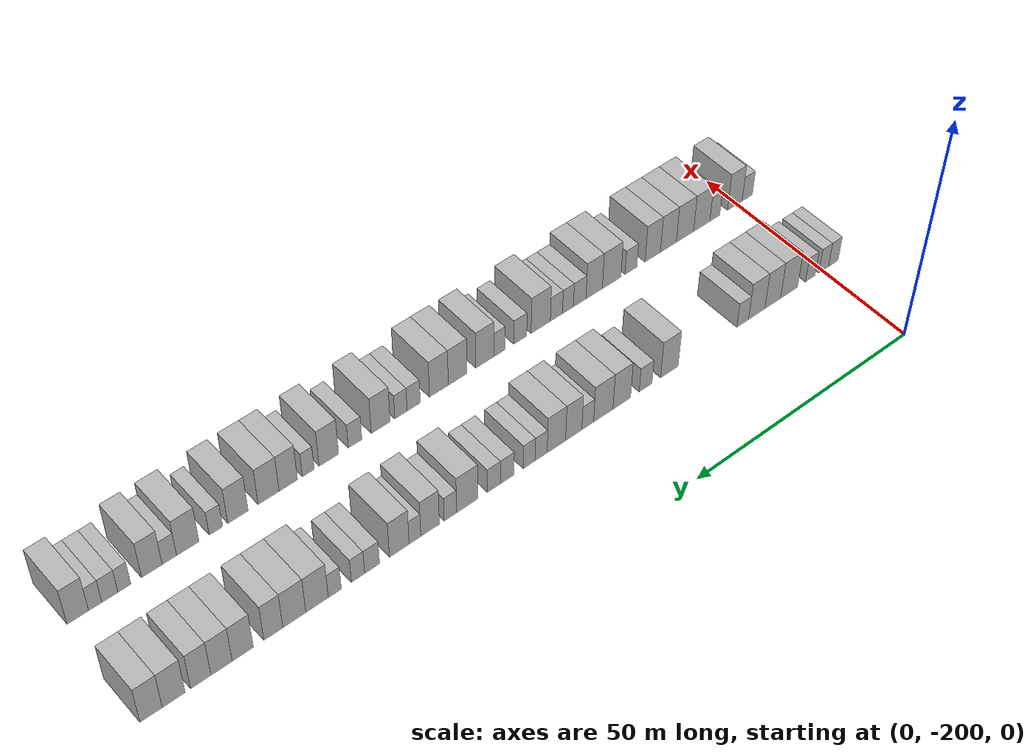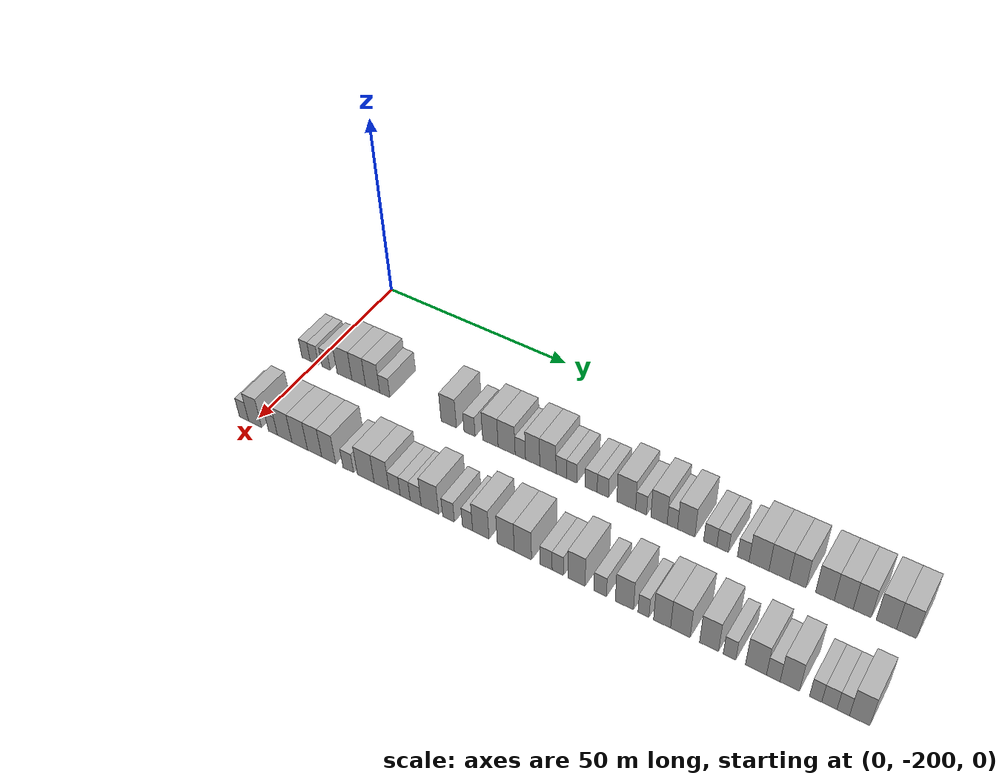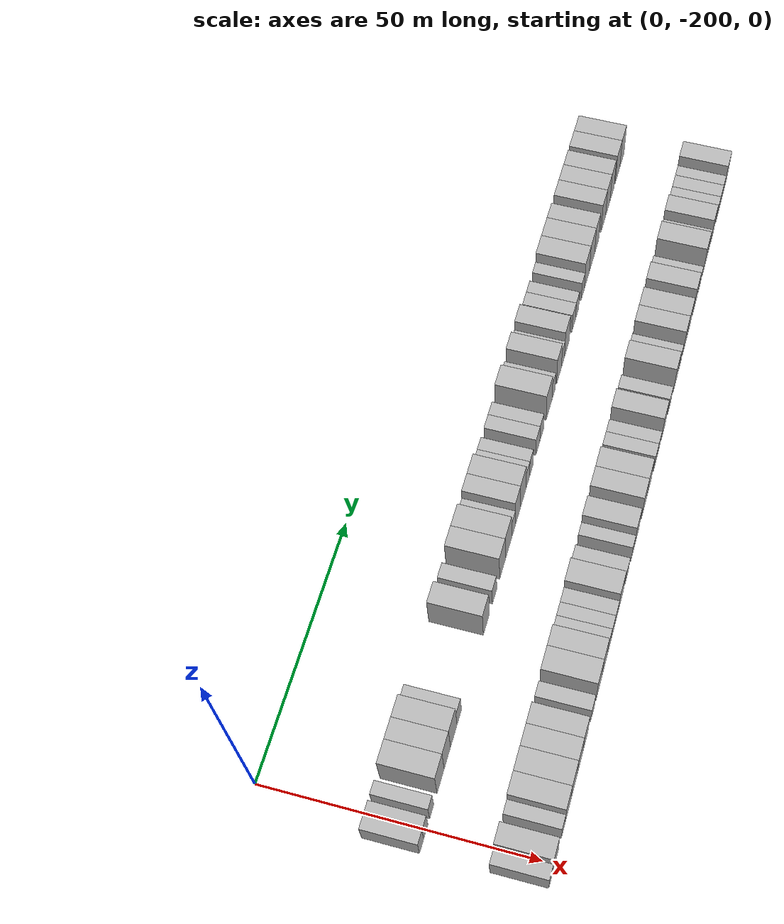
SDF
<sdf version="1.6">
 <world name="default">
  <model name="building_1">
   <static>1</static>
   <pose>25.0000 -202.7719 0 0.000000 0.000000 0.000000</pose>
   <link name="link">
    <pose>0 0 3.00 0 0 0</pose>
    <collision name="collision"><geometry><box><size>10.0000 2.4561 6.0000</size></box></geometry></collision>
    <visual name="visual">
     <cast_shadows>0</cast_shadows>
     <geometry><box><size>10.0000 2.4561 6.0000</size></box></geometry>
     <material>
      <script>
       <uri>model://HANNAS_wall/materials/scripts</uri>
       <uri>model://HANNAS_wall/materials/textures</uri>
       <name>vrc/HANNAS_wall</name>
      </script>
     </material>
    </visual>
   </link>
  </model>
  <model name="building_2">
   <static>1</static>
   <pose>25.0000 -200.3070 0 0.000000 0.000000 0.000000</pose>
   <link name="link">
    <pose>0 0 3.00 0 0 0</pose>
    <collision name="collision"><geometry><box><size>10.0000 2.4737 6.0000</size></box></geometry></collision>
    <visual name="visual">
     <cast_shadows>0</cast_shadows>
     <geometry><box><size>10.0000 2.4737 6.0000</size></box></geometry>
     <material>
      <script>
       <uri>model://HANNAS_wall/materials/scripts</uri>
       <uri>model://HANNAS_wall/materials/textures</uri>
       <name>vrc/HANNAS_wall</name>
      </script>
     </material>
    </visual>
   </link>
  </model>
  <model name="building_3">
   <static>1</static>
   <pose>25.0000 -196.8494 0 0.000000 0.000000 0.000000</pose>
   <link name="link">
    <pose>0 0 3.00 0 0 0</pose>
    <collision name="collision"><geometry><box><size>10.0000 2.4415 6.0000</size></box></geometry></collision>
    <visual name="visual">
     <cast_shadows>0</cast_shadows>
     <geometry><box><size>10.0000 2.4415 6.0000</size></box></geometry>
     <material>
      <script>
       <uri>model://HANNAS_wall/materials/scripts</uri>
       <uri>model://HANNAS_wall/materials/textures</uri>
       <name>vrc/HANNAS_wall</name>
      </script>
     </material>
    </visual>
   </link>
  </model>
  <model name="building_4">
   <static>1</static>
   <pose>25.0000 -191.4836 0 0.000000 0.000000 0.000000</pose>
   <link name="link">
    <pose>0 0 4.50 0 0 0</pose>
    <collision name="collision"><geometry><box><size>10.0000 4.2901 9.0000</size></box></geometry></collision>
    <visual name="visual">
     <cast_shadows>0</cast_shadows>
     <geometry><box><size>10.0000 4.2901 9.0000</size></box></geometry>
     <material>
      <script>
       <uri>model://HANNAS_wall/materials/scripts</uri>
       <uri>model://HANNAS_wall/materials/textures</uri>
       <name>vrc/HANNAS_wall</name>
      </script>
     </material>
    </visual>
   </link>
  </model>
  <model name="building_5">
   <static>1</static>
   <pose>25.0000 -187.3843 0 0.000000 0.000000 0.000000</pose>
   <link name="link">
    <pose>0 0 4.50 0 0 0</pose>
    <collision name="collision"><geometry><box><size>10.0000 3.9084 9.0000</size></box></geometry></collision>
    <visual name="visual">
     <cast_shadows>0</cast_shadows>
     <geometry><box><size>10.0000 3.9084 9.0000</size></box></geometry>
     <material>
      <script>
       <uri>model://HANNAS_wall/materials/scripts</uri>
       <uri>model://HANNAS_wall/materials/textures</uri>
       <name>vrc/HANNAS_wall</name>
      </script>
     </material>
    </visual>
   </link>
  </model>
  <model name="building_6">
   <static>1</static>
   <pose>25.0000 -183.4129 0 0.000000 0.000000 0.000000</pose>
   <link name="link">
    <pose>0 0 4.50 0 0 0</pose>
    <collision name="collision"><geometry><box><size>10.0000 4.0344 9.0000</size></box></geometry></collision>
    <visual name="visual">
     <cast_shadows>0</cast_shadows>
     <geometry><box><size>10.0000 4.0344 9.0000</size></box></geometry>
     <material>
      <script>
       <uri>model://HANNAS_wall/materials/scripts</uri>
       <uri>model://HANNAS_wall/materials/textures</uri>
       <name>vrc/HANNAS_wall</name>
      </script>
     </material>
    </visual>
   </link>
  </model>
  <model name="building_7">
   <static>1</static>
   <pose>25.0000 -179.9750 0 0.000000 0.000000 0.000000</pose>
   <link name="link">
    <pose>0 0 3.00 0 0 0</pose>
    <collision name="collision"><geometry><box><size>10.0000 2.8414 6.0000</size></box></geometry></collision>
    <visual name="visual">
     <cast_shadows>0</cast_shadows>
     <geometry><box><size>10.0000 2.8414 6.0000</size></box></geometry>
     <material>
      <script>
       <uri>model://HANNAS_wall/materials/scripts</uri>
       <uri>model://HANNAS_wall/materials/textures</uri>
       <name>vrc/HANNAS_wall</name>
      </script>
     </material>
    </visual>
   </link>
  </model>
  <model name="building_8">
   <static>1</static>
   <pose>25.0000 -162.3760 0 0.000000 0.000000 0.000000</pose>
   <link name="link">
    <pose>0 0 4.50 0 0 0</pose>
    <collision name="collision"><geometry><box><size>10.0000 4.1189 9.0000</size></box></geometry></collision>
    <visual name="visual">
     <cast_shadows>0</cast_shadows>
     <geometry><box><size>10.0000 4.1189 9.0000</size></box></geometry>
     <material>
      <script>
       <uri>model://HANNAS_wall/materials/scripts</uri>
       <uri>model://HANNAS_wall/materials/textures</uri>
       <name>vrc/HANNAS_wall</name>
      </script>
     </material>
    </visual>
   </link>
  </model>
  <model name="building_9">
   <static>1</static>
   <pose>25.0000 -156.8361 0 0.000000 0.000000 0.000000</pose>
   <link name="link">
    <pose>0 0 3.00 0 0 0</pose>
    <collision name="collision"><geometry><box><size>10.0000 2.9607 6.0000</size></box></geometry></collision>
    <visual name="visual">
     <cast_shadows>0</cast_shadows>
     <geometry><box><size>10.0000 2.9607 6.0000</size></box></geometry>
     <material>
      <script>
       <uri>model://HANNAS_wall/materials/scripts</uri>
       <uri>model://HANNAS_wall/materials/textures</uri>
       <name>vrc/HANNAS_wall</name>
      </script>
     </material>
    </visual>
   </link>
  </model>
  <model name="building_10">
   <static>1</static>
   <pose>25.0000 -151.3435 0 0.000000 0.000000 0.000000</pose>
   <link name="link">
    <pose>0 0 4.50 0 0 0</pose>
    <collision name="collision"><geometry><box><size>10.0000 4.0245 9.0000</size></box></geometry></collision>
    <visual name="visual">
     <cast_shadows>0</cast_shadows>
     <geometry><box><size>10.0000 4.0245 9.0000</size></box></geometry>
     <material>
      <script>
       <uri>model://HANNAS_wall/materials/scripts</uri>
       <uri>model://HANNAS_wall/materials/textures</uri>
       <name>vrc/HANNAS_wall</name>
      </script>
     </material>
    </visual>
   </link>
  </model>
  <model name="building_11">
   <static>1</static>
   <pose>25.0000 -147.1299 0 0.000000 0.000000 0.000000</pose>
   <link name="link">
    <pose>0 0 4.50 0 0 0</pose>
    <collision name="collision"><geometry><box><size>10.0000 4.4029 9.0000</size></box></geometry></collision>
    <visual name="visual">
     <cast_shadows>0</cast_shadows>
     <geometry><box><size>10.0000 4.4029 9.0000</size></box></geometry>
     <material>
      <script>
       <uri>model://HANNAS_wall/materials/scripts</uri>
       <uri>model://HANNAS_wall/materials/textures</uri>
       <name>vrc/HANNAS_wall</name>
      </script>
     </material>
    </visual>
   </link>
  </model>
  <model name="building_12">
   <static>1</static>
   <pose>25.0000 -143.6079 0 0.000000 0.000000 0.000000</pose>
   <link name="link">
    <pose>0 0 3.00 0 0 0</pose>
    <collision name="collision"><geometry><box><size>10.0000 2.6410 6.0000</size></box></geometry></collision>
    <visual name="visual">
     <cast_shadows>0</cast_shadows>
     <geometry><box><size>10.0000 2.6410 6.0000</size></box></geometry>
     <material>
      <script>
       <uri>model://HANNAS_wall/materials/scripts</uri>
       <uri>model://HANNAS_wall/materials/textures</uri>
       <name>vrc/HANNAS_wall</name>
      </script>
     </material>
    </visual>
   </link>
  </model>
  <model name="building_13">
   <static>1</static>
   <pose>25.0000 -140.4758 0 0.000000 0.000000 0.000000</pose>
   <link name="link">
    <pose>0 0 4.50 0 0 0</pose>
    <collision name="collision"><geometry><box><size>10.0000 3.6233 9.0000</size></box></geometry></collision>
    <visual name="visual">
     <cast_shadows>0</cast_shadows>
     <geometry><box><size>10.0000 3.6233 9.0000</size></box></geometry>
     <material>
      <script>
       <uri>model://HANNAS_wall/materials/scripts</uri>
       <uri>model://HANNAS_wall/materials/textures</uri>
       <name>vrc/HANNAS_wall</name>
      </script>
     </material>
    </visual>
   </link>
  </model>
  <model name="building_14">
   <static>1</static>
   <pose>25.0000 -136.6312 0 0.000000 0.000000 0.000000</pose>
   <link name="link">
    <pose>0 0 4.50 0 0 0</pose>
    <collision name="collision"><geometry><box><size>10.0000 4.0660 9.0000</size></box></geometry></collision>
    <visual name="visual">
     <cast_shadows>0</cast_shadows>
     <geometry><box><size>10.0000 4.0660 9.0000</size></box></geometry>
     <material>
      <script>
       <uri>model://HANNAS_wall/materials/scripts</uri>
       <uri>model://HANNAS_wall/materials/textures</uri>
       <name>vrc/HANNAS_wall</name>
      </script>
     </material>
    </visual>
   </link>
  </model>
  <model name="building_15">
   <static>1</static>
   <pose>25.0000 -133.2866 0 0.000000 0.000000 0.000000</pose>
   <link name="link">
    <pose>0 0 3.00 0 0 0</pose>
    <collision name="collision"><geometry><box><size>10.0000 2.6232 6.0000</size></box></geometry></collision>
    <visual name="visual">
     <cast_shadows>0</cast_shadows>
     <geometry><box><size>10.0000 2.6232 6.0000</size></box></geometry>
     <material>
      <script>
       <uri>model://HANNAS_wall/materials/scripts</uri>
       <uri>model://HANNAS_wall/materials/textures</uri>
       <name>vrc/HANNAS_wall</name>
      </script>
     </material>
    </visual>
   </link>
  </model>
  <model name="building_16">
   <static>1</static>
   <pose>25.0000 -130.6864 0 0.000000 0.000000 0.000000</pose>
   <link name="link">
    <pose>0 0 3.00 0 0 0</pose>
    <collision name="collision"><geometry><box><size>10.0000 2.5771 6.0000</size></box></geometry></collision>
    <visual name="visual">
     <cast_shadows>0</cast_shadows>
     <geometry><box><size>10.0000 2.5771 6.0000</size></box></geometry>
     <material>
      <script>
       <uri>model://HANNAS_wall/materials/scripts</uri>
       <uri>model://HANNAS_wall/materials/textures</uri>
       <name>vrc/HANNAS_wall</name>
      </script>
     </material>
    </visual>
   </link>
  </model>
  <model name="building_17">
   <static>1</static>
   <pose>25.0000 -125.9183 0 0.000000 0.000000 0.000000</pose>
   <link name="link">
    <pose>0 0 3.00 0 0 0</pose>
    <collision name="collision"><geometry><box><size>10.0000 2.9592 6.0000</size></box></geometry></collision>
    <visual name="visual">
     <cast_shadows>0</cast_shadows>
     <geometry><box><size>10.0000 2.9592 6.0000</size></box></geometry>
     <material>
      <script>
       <uri>model://HANNAS_wall/materials/scripts</uri>
       <uri>model://HANNAS_wall/materials/textures</uri>
       <name>vrc/HANNAS_wall</name>
      </script>
     </material>
    </visual>
   </link>
  </model>
  <model name="building_18">
   <static>1</static>
   <pose>25.0000 -123.0581 0 0.000000 0.000000 0.000000</pose>
   <link name="link">
    <pose>0 0 3.00 0 0 0</pose>
    <collision name="collision"><geometry><box><size>10.0000 2.7611 6.0000</size></box></geometry></collision>
    <visual name="visual">
     <cast_shadows>0</cast_shadows>
     <geometry><box><size>10.0000 2.7611 6.0000</size></box></geometry>
     <material>
      <script>
       <uri>model://HANNAS_wall/materials/scripts</uri>
       <uri>model://HANNAS_wall/materials/textures</uri>
       <name>vrc/HANNAS_wall</name>
      </script>
     </material>
    </visual>
   </link>
  </model>
  <model name="building_19">
   <static>1</static>
   <pose>25.0000 -117.4313 0 0.000000 0.000000 0.000000</pose>
   <link name="link">
    <pose>0 0 4.50 0 0 0</pose>
    <collision name="collision"><geometry><box><size>10.0000 4.4925 9.0000</size></box></geometry></collision>
    <visual name="visual">
     <cast_shadows>0</cast_shadows>
     <geometry><box><size>10.0000 4.4925 9.0000</size></box></geometry>
     <material>
      <script>
       <uri>model://HANNAS_wall/materials/scripts</uri>
       <uri>model://HANNAS_wall/materials/textures</uri>
       <name>vrc/HANNAS_wall</name>
      </script>
     </material>
    </visual>
   </link>
  </model>
  <model name="building_20">
   <static>1</static>
   <pose>25.0000 -113.8875 0 0.000000 0.000000 0.000000</pose>
   <link name="link">
    <pose>0 0 3.00 0 0 0</pose>
    <collision name="collision"><geometry><box><size>10.0000 2.5951 6.0000</size></box></geometry></collision>
    <visual name="visual">
     <cast_shadows>0</cast_shadows>
     <geometry><box><size>10.0000 2.5951 6.0000</size></box></geometry>
     <material>
      <script>
       <uri>model://HANNAS_wall/materials/scripts</uri>
       <uri>model://HANNAS_wall/materials/textures</uri>
       <name>vrc/HANNAS_wall</name>
      </script>
     </material>
    </visual>
   </link>
  </model>
  <model name="building_21">
   <static>1</static>
   <pose>25.0000 -109.6784 0 0.000000 0.000000 0.000000</pose>
   <link name="link">
    <pose>0 0 4.50 0 0 0</pose>
    <collision name="collision"><geometry><box><size>10.0000 3.8230 9.0000</size></box></geometry></collision>
    <visual name="visual">
     <cast_shadows>0</cast_shadows>
     <geometry><box><size>10.0000 3.8230 9.0000</size></box></geometry>
     <material>
      <script>
       <uri>model://HANNAS_wall/materials/scripts</uri>
       <uri>model://HANNAS_wall/materials/textures</uri>
       <name>vrc/HANNAS_wall</name>
      </script>
     </material>
    </visual>
   </link>
  </model>
  <model name="building_22">
   <static>1</static>
   <pose>25.0000 -106.5655 0 0.000000 0.000000 0.000000</pose>
   <link name="link">
    <pose>0 0 3.00 0 0 0</pose>
    <collision name="collision"><geometry><box><size>10.0000 2.4029 6.0000</size></box></geometry></collision>
    <visual name="visual">
     <cast_shadows>0</cast_shadows>
     <geometry><box><size>10.0000 2.4029 6.0000</size></box></geometry>
     <material>
      <script>
       <uri>model://HANNAS_wall/materials/scripts</uri>
       <uri>model://HANNAS_wall/materials/textures</uri>
       <name>vrc/HANNAS_wall</name>
      </script>
     </material>
    </visual>
   </link>
  </model>
  <model name="building_23">
   <static>1</static>
   <pose>25.0000 -103.3707 0 0.000000 0.000000 0.000000</pose>
   <link name="link">
    <pose>0 0 4.50 0 0 0</pose>
    <collision name="collision"><geometry><box><size>10.0000 3.9866 9.0000</size></box></geometry></collision>
    <visual name="visual">
     <cast_shadows>0</cast_shadows>
     <geometry><box><size>10.0000 3.9866 9.0000</size></box></geometry>
     <material>
      <script>
       <uri>model://HANNAS_wall/materials/scripts</uri>
       <uri>model://HANNAS_wall/materials/textures</uri>
       <name>vrc/HANNAS_wall</name>
      </script>
     </material>
    </visual>
   </link>
  </model>
  <model name="building_24">
   <static>1</static>
   <pose>25.0000 -97.8894 0 0.000000 0.000000 0.000000</pose>
   <link name="link">
    <pose>0 0 3.00 0 0 0</pose>
    <collision name="collision"><geometry><box><size>10.0000 2.9759 6.0000</size></box></geometry></collision>
    <visual name="visual">
     <cast_shadows>0</cast_shadows>
     <geometry><box><size>10.0000 2.9759 6.0000</size></box></geometry>
     <material>
      <script>
       <uri>model://HANNAS_wall/materials/scripts</uri>
       <uri>model://HANNAS_wall/materials/textures</uri>
       <name>vrc/HANNAS_wall</name>
      </script>
     </material>
    </visual>
   </link>
  </model>
  <model name="building_25">
   <static>1</static>
   <pose>25.0000 -95.0828 0 0.000000 0.000000 0.000000</pose>
   <link name="link">
    <pose>0 0 3.00 0 0 0</pose>
    <collision name="collision"><geometry><box><size>10.0000 2.6372 6.0000</size></box></geometry></collision>
    <visual name="visual">
     <cast_shadows>0</cast_shadows>
     <geometry><box><size>10.0000 2.6372 6.0000</size></box></geometry>
     <material>
      <script>
       <uri>model://HANNAS_wall/materials/scripts</uri>
       <uri>model://HANNAS_wall/materials/textures</uri>
       <name>vrc/HANNAS_wall</name>
      </script>
     </material>
    </visual>
   </link>
  </model>
  <model name="building_26">
   <static>1</static>
   <pose>25.0000 -90.4833 0 0.000000 0.000000 0.000000</pose>
   <link name="link">
    <pose>0 0 3.00 0 0 0</pose>
    <collision name="collision"><geometry><box><size>10.0000 2.5618 6.0000</size></box></geometry></collision>
    <visual name="visual">
     <cast_shadows>0</cast_shadows>
     <geometry><box><size>10.0000 2.5618 6.0000</size></box></geometry>
     <material>
      <script>
       <uri>model://HANNAS_wall/materials/scripts</uri>
       <uri>model://HANNAS_wall/materials/textures</uri>
       <name>vrc/HANNAS_wall</name>
      </script>
     </material>
    </visual>
   </link>
  </model>
  <model name="building_27">
   <static>1</static>
   <pose>25.0000 -87.0142 0 0.000000 0.000000 0.000000</pose>
   <link name="link">
    <pose>0 0 4.50 0 0 0</pose>
    <collision name="collision"><geometry><box><size>10.0000 4.3764 9.0000</size></box></geometry></collision>
    <visual name="visual">
     <cast_shadows>0</cast_shadows>
     <geometry><box><size>10.0000 4.3764 9.0000</size></box></geometry>
     <material>
      <script>
       <uri>model://HANNAS_wall/materials/scripts</uri>
       <uri>model://HANNAS_wall/materials/textures</uri>
       <name>vrc/HANNAS_wall</name>
      </script>
     </material>
    </visual>
   </link>
  </model>
  <model name="building_28">
   <static>1</static>
   <pose>25.0000 -82.6130 0 0.000000 0.000000 0.000000</pose>
   <link name="link">
    <pose>0 0 4.50 0 0 0</pose>
    <collision name="collision"><geometry><box><size>10.0000 4.4262 9.0000</size></box></geometry></collision>
    <visual name="visual">
     <cast_shadows>0</cast_shadows>
     <geometry><box><size>10.0000 4.4262 9.0000</size></box></geometry>
     <material>
      <script>
       <uri>model://HANNAS_wall/materials/scripts</uri>
       <uri>model://HANNAS_wall/materials/textures</uri>
       <name>vrc/HANNAS_wall</name>
      </script>
     </material>
    </visual>
   </link>
  </model>
  <model name="building_29">
   <static>1</static>
   <pose>25.0000 -78.5988 0 0.000000 0.000000 0.000000</pose>
   <link name="link">
    <pose>0 0 4.50 0 0 0</pose>
    <collision name="collision"><geometry><box><size>10.0000 3.6021 9.0000</size></box></geometry></collision>
    <visual name="visual">
     <cast_shadows>0</cast_shadows>
     <geometry><box><size>10.0000 3.6021 9.0000</size></box></geometry>
     <material>
      <script>
       <uri>model://HANNAS_wall/materials/scripts</uri>
       <uri>model://HANNAS_wall/materials/textures</uri>
       <name>vrc/HANNAS_wall</name>
      </script>
     </material>
    </visual>
   </link>
  </model>
  <model name="building_30">
   <static>1</static>
   <pose>25.0000 -72.8228 0 0.000000 0.000000 0.000000</pose>
   <link name="link">
    <pose>0 0 4.50 0 0 0</pose>
    <collision name="collision"><geometry><box><size>10.0000 3.9499 9.0000</size></box></geometry></collision>
    <visual name="visual">
     <cast_shadows>0</cast_shadows>
     <geometry><box><size>10.0000 3.9499 9.0000</size></box></geometry>
     <material>
      <script>
       <uri>model://HANNAS_wall/materials/scripts</uri>
       <uri>model://HANNAS_wall/materials/textures</uri>
       <name>vrc/HANNAS_wall</name>
      </script>
     </material>
    </visual>
   </link>
  </model>
  <model name="building_31">
   <static>1</static>
   <pose>25.0000 -68.8749 0 0.000000 0.000000 0.000000</pose>
   <link name="link">
    <pose>0 0 4.50 0 0 0</pose>
    <collision name="collision"><geometry><box><size>10.0000 3.9461 9.0000</size></box></geometry></collision>
    <visual name="visual">
     <cast_shadows>0</cast_shadows>
     <geometry><box><size>10.0000 3.9461 9.0000</size></box></geometry>
     <material>
      <script>
       <uri>model://HANNAS_wall/materials/scripts</uri>
       <uri>model://HANNAS_wall/materials/textures</uri>
       <name>vrc/HANNAS_wall</name>
      </script>
     </material>
    </visual>
   </link>
  </model>
  <model name="building_32">
   <static>1</static>
   <pose>25.0000 -65.0329 0 0.000000 0.000000 0.000000</pose>
   <link name="link">
    <pose>0 0 4.50 0 0 0</pose>
    <collision name="collision"><geometry><box><size>10.0000 3.7378 9.0000</size></box></geometry></collision>
    <visual name="visual">
     <cast_shadows>0</cast_shadows>
     <geometry><box><size>10.0000 3.7378 9.0000</size></box></geometry>
     <material>
      <script>
       <uri>model://HANNAS_wall/materials/scripts</uri>
       <uri>model://HANNAS_wall/materials/textures</uri>
       <name>vrc/HANNAS_wall</name>
      </script>
     </material>
    </visual>
   </link>
  </model>
  <model name="building_33">
   <static>1</static>
   <pose>25.0000 -60.0952 0 0.000000 0.000000 0.000000</pose>
   <link name="link">
    <pose>0 0 4.50 0 0 0</pose>
    <collision name="collision"><geometry><box><size>10.0000 4.1376 9.0000</size></box></geometry></collision>
    <visual name="visual">
     <cast_shadows>0</cast_shadows>
     <geometry><box><size>10.0000 4.1376 9.0000</size></box></geometry>
     <material>
      <script>
       <uri>model://HANNAS_wall/materials/scripts</uri>
       <uri>model://HANNAS_wall/materials/textures</uri>
       <name>vrc/HANNAS_wall</name>
      </script>
     </material>
    </visual>
   </link>
  </model>
  <model name="building_34">
   <static>1</static>
   <pose>25.0000 -56.0205 0 0.000000 0.000000 0.000000</pose>
   <link name="link">
    <pose>0 0 4.50 0 0 0</pose>
    <collision name="collision"><geometry><box><size>10.0000 4.0118 9.0000</size></box></geometry></collision>
    <visual name="visual">
     <cast_shadows>0</cast_shadows>
     <geometry><box><size>10.0000 4.0118 9.0000</size></box></geometry>
     <material>
      <script>
       <uri>model://HANNAS_wall/materials/scripts</uri>
       <uri>model://HANNAS_wall/materials/textures</uri>
       <name>vrc/HANNAS_wall</name>
      </script>
     </material>
    </visual>
   </link>
  </model>
  <model name="building_105">
   <static>1</static>
   <pose>47.0000 -202.6740 0 0.000000 0.000000 0.000000</pose>
   <link name="link">
    <pose>0 0 3.00 0 0 0</pose>
    <collision name="collision"><geometry><box><size>10.0000 2.6521 6.0000</size></box></geometry></collision>
    <visual name="visual">
     <cast_shadows>0</cast_shadows>
     <geometry><box><size>10.0000 2.6521 6.0000</size></box></geometry>
     <material>
      <script>
       <uri>model://HANNAS_wall/materials/scripts</uri>
       <uri>model://HANNAS_wall/materials/textures</uri>
       <name>vrc/HANNAS_wall</name>
      </script>
     </material>
    </visual>
   </link>
  </model>
  <model name="building_106">
   <static>1</static>
   <pose>47.0000 -199.4708 0 0.000000 0.000000 0.000000</pose>
   <link name="link">
    <pose>0 0 4.50 0 0 0</pose>
    <collision name="collision"><geometry><box><size>10.0000 3.7542 9.0000</size></box></geometry></collision>
    <visual name="visual">
     <cast_shadows>0</cast_shadows>
     <geometry><box><size>10.0000 3.7542 9.0000</size></box></geometry>
     <material>
      <script>
       <uri>model://HANNAS_wall/materials/scripts</uri>
       <uri>model://HANNAS_wall/materials/textures</uri>
       <name>vrc/HANNAS_wall</name>
      </script>
     </material>
    </visual>
   </link>
  </model>
  <model name="building_107">
   <static>1</static>
   <pose>47.0000 -194.3325 0 0.000000 0.000000 0.000000</pose>
   <link name="link">
    <pose>0 0 3.00 0 0 0</pose>
    <collision name="collision"><geometry><box><size>10.0000 2.5225 6.0000</size></box></geometry></collision>
    <visual name="visual">
     <cast_shadows>0</cast_shadows>
     <geometry><box><size>10.0000 2.5225 6.0000</size></box></geometry>
     <material>
      <script>
       <uri>model://HANNAS_wall/materials/scripts</uri>
       <uri>model://HANNAS_wall/materials/textures</uri>
       <name>vrc/HANNAS_wall</name>
      </script>
     </material>
    </visual>
   </link>
  </model>
  <model name="building_108">
   <static>1</static>
   <pose>47.0000 -191.0178 0 0.000000 0.000000 0.000000</pose>
   <link name="link">
    <pose>0 0 4.50 0 0 0</pose>
    <collision name="collision"><geometry><box><size>10.0000 4.1067 9.0000</size></box></geometry></collision>
    <visual name="visual">
     <cast_shadows>0</cast_shadows>
     <geometry><box><size>10.0000 4.1067 9.0000</size></box></geometry>
     <material>
      <script>
       <uri>model://HANNAS_wall/materials/scripts</uri>
       <uri>model://HANNAS_wall/materials/textures</uri>
       <name>vrc/HANNAS_wall</name>
      </script>
     </material>
    </visual>
   </link>
  </model>
  <model name="building_109">
   <static>1</static>
   <pose>47.0000 -186.8002 0 0.000000 0.000000 0.000000</pose>
   <link name="link">
    <pose>0 0 4.50 0 0 0</pose>
    <collision name="collision"><geometry><box><size>10.0000 4.3285 9.0000</size></box></geometry></collision>
    <visual name="visual">
     <cast_shadows>0</cast_shadows>
     <geometry><box><size>10.0000 4.3285 9.0000</size></box></geometry>
     <material>
      <script>
       <uri>model://HANNAS_wall/materials/scripts</uri>
       <uri>model://HANNAS_wall/materials/textures</uri>
       <name>vrc/HANNAS_wall</name>
      </script>
     </material>
    </visual>
   </link>
  </model>
  <model name="building_110">
   <static>1</static>
   <pose>47.0000 -182.6666 0 0.000000 0.000000 0.000000</pose>
   <link name="link">
    <pose>0 0 4.50 0 0 0</pose>
    <collision name="collision"><geometry><box><size>10.0000 3.9386 9.0000</size></box></geometry></collision>
    <visual name="visual">
     <cast_shadows>0</cast_shadows>
     <geometry><box><size>10.0000 3.9386 9.0000</size></box></geometry>
     <material>
      <script>
       <uri>model://HANNAS_wall/materials/scripts</uri>
       <uri>model://HANNAS_wall/materials/textures</uri>
       <name>vrc/HANNAS_wall</name>
      </script>
     </material>
    </visual>
   </link>
  </model>
  <model name="building_111">
   <static>1</static>
   <pose>47.0000 -178.8112 0 0.000000 0.000000 0.000000</pose>
   <link name="link">
    <pose>0 0 4.50 0 0 0</pose>
    <collision name="collision"><geometry><box><size>10.0000 3.7724 9.0000</size></box></geometry></collision>
    <visual name="visual">
     <cast_shadows>0</cast_shadows>
     <geometry><box><size>10.0000 3.7724 9.0000</size></box></geometry>
     <material>
      <script>
       <uri>model://HANNAS_wall/materials/scripts</uri>
       <uri>model://HANNAS_wall/materials/textures</uri>
       <name>vrc/HANNAS_wall</name>
      </script>
     </material>
    </visual>
   </link>
  </model>
  <model name="building_112">
   <static>1</static>
   <pose>47.0000 -173.4894 0 0.000000 0.000000 0.000000</pose>
   <link name="link">
    <pose>0 0 3.00 0 0 0</pose>
    <collision name="collision"><geometry><box><size>10.0000 2.8713 6.0000</size></box></geometry></collision>
    <visual name="visual">
     <cast_shadows>0</cast_shadows>
     <geometry><box><size>10.0000 2.8713 6.0000</size></box></geometry>
     <material>
      <script>
       <uri>model://HANNAS_wall/materials/scripts</uri>
       <uri>model://HANNAS_wall/materials/textures</uri>
       <name>vrc/HANNAS_wall</name>
      </script>
     </material>
    </visual>
   </link>
  </model>
  <model name="building_113">
   <static>1</static>
   <pose>47.0000 -168.8199 0 0.000000 0.000000 0.000000</pose>
   <link name="link">
    <pose>0 0 4.50 0 0 0</pose>
    <collision name="collision"><geometry><box><size>10.0000 4.4678 9.0000</size></box></geometry></collision>
    <visual name="visual">
     <cast_shadows>0</cast_shadows>
     <geometry><box><size>10.0000 4.4678 9.0000</size></box></geometry>
     <material>
      <script>
       <uri>model://HANNAS_wall/materials/scripts</uri>
       <uri>model://HANNAS_wall/materials/textures</uri>
       <name>vrc/HANNAS_wall</name>
      </script>
     </material>
    </visual>
   </link>
  </model>
  <model name="building_114">
   <static>1</static>
   <pose>47.0000 -164.6323 0 0.000000 0.000000 0.000000</pose>
   <link name="link">
    <pose>0 0 4.50 0 0 0</pose>
    <collision name="collision"><geometry><box><size>10.0000 3.9074 9.0000</size></box></geometry></collision>
    <visual name="visual">
     <cast_shadows>0</cast_shadows>
     <geometry><box><size>10.0000 3.9074 9.0000</size></box></geometry>
     <material>
      <script>
       <uri>model://HANNAS_wall/materials/scripts</uri>
       <uri>model://HANNAS_wall/materials/textures</uri>
       <name>vrc/HANNAS_wall</name>
      </script>
     </material>
    </visual>
   </link>
  </model>
  <model name="building_115">
   <static>1</static>
   <pose>47.0000 -161.2075 0 0.000000 0.000000 0.000000</pose>
   <link name="link">
    <pose>0 0 3.00 0 0 0</pose>
    <collision name="collision"><geometry><box><size>10.0000 2.9421 6.0000</size></box></geometry></collision>
    <visual name="visual">
     <cast_shadows>0</cast_shadows>
     <geometry><box><size>10.0000 2.9421 6.0000</size></box></geometry>
     <material>
      <script>
       <uri>model://HANNAS_wall/materials/scripts</uri>
       <uri>model://HANNAS_wall/materials/textures</uri>
       <name>vrc/HANNAS_wall</name>
      </script>
     </material>
    </visual>
   </link>
  </model>
  <model name="building_116">
   <static>1</static>
   <pose>47.0000 -158.4527 0 0.000000 0.000000 0.000000</pose>
   <link name="link">
    <pose>0 0 3.00 0 0 0</pose>
    <collision name="collision"><geometry><box><size>10.0000 2.5675 6.0000</size></box></geometry></collision>
    <visual name="visual">
     <cast_shadows>0</cast_shadows>
     <geometry><box><size>10.0000 2.5675 6.0000</size></box></geometry>
     <material>
      <script>
       <uri>model://HANNAS_wall/materials/scripts</uri>
       <uri>model://HANNAS_wall/materials/textures</uri>
       <name>vrc/HANNAS_wall</name>
      </script>
     </material>
    </visual>
   </link>
  </model>
  <model name="building_117">
   <static>1</static>
   <pose>47.0000 -155.7547 0 0.000000 0.000000 0.000000</pose>
   <link name="link">
    <pose>0 0 3.00 0 0 0</pose>
    <collision name="collision"><geometry><box><size>10.0000 2.8286 6.0000</size></box></geometry></collision>
    <visual name="visual">
     <cast_shadows>0</cast_shadows>
     <geometry><box><size>10.0000 2.8286 6.0000</size></box></geometry>
     <material>
      <script>
       <uri>model://HANNAS_wall/materials/scripts</uri>
       <uri>model://HANNAS_wall/materials/textures</uri>
       <name>vrc/HANNAS_wall</name>
      </script>
     </material>
    </visual>
   </link>
  </model>
  <model name="building_118">
   <static>1</static>
   <pose>47.0000 -152.1083 0 0.000000 0.000000 0.000000</pose>
   <link name="link">
    <pose>0 0 4.50 0 0 0</pose>
    <collision name="collision"><geometry><box><size>10.0000 4.4642 9.0000</size></box></geometry></collision>
    <visual name="visual">
     <cast_shadows>0</cast_shadows>
     <geometry><box><size>10.0000 4.4642 9.0000</size></box></geometry>
     <material>
      <script>
       <uri>model://HANNAS_wall/materials/scripts</uri>
       <uri>model://HANNAS_wall/materials/textures</uri>
       <name>vrc/HANNAS_wall</name>
      </script>
     </material>
    </visual>
   </link>
  </model>
  <model name="building_119">
   <static>1</static>
   <pose>47.0000 -147.4029 0 0.000000 0.000000 0.000000</pose>
   <link name="link">
    <pose>0 0 3.00 0 0 0</pose>
    <collision name="collision"><geometry><box><size>10.0000 2.9465 6.0000</size></box></geometry></collision>
    <visual name="visual">
     <cast_shadows>0</cast_shadows>
     <geometry><box><size>10.0000 2.9465 6.0000</size></box></geometry>
     <material>
      <script>
       <uri>model://HANNAS_wall/materials/scripts</uri>
       <uri>model://HANNAS_wall/materials/textures</uri>
       <name>vrc/HANNAS_wall</name>
      </script>
     </material>
    </visual>
   </link>
  </model>
  <model name="building_120">
   <static>1</static>
   <pose>47.0000 -142.6660 0 0.000000 0.000000 0.000000</pose>
   <link name="link">
    <pose>0 0 3.00 0 0 0</pose>
    <collision name="collision"><geometry><box><size>10.0000 2.5274 6.0000</size></box></geometry></collision>
    <visual name="visual">
     <cast_shadows>0</cast_shadows>
     <geometry><box><size>10.0000 2.5274 6.0000</size></box></geometry>
     <material>
      <script>
       <uri>model://HANNAS_wall/materials/scripts</uri>
       <uri>model://HANNAS_wall/materials/textures</uri>
       <name>vrc/HANNAS_wall</name>
      </script>
     </material>
    </visual>
   </link>
  </model>
  <model name="building_121">
   <static>1</static>
   <pose>47.0000 -139.3854 0 0.000000 0.000000 0.000000</pose>
   <link name="link">
    <pose>0 0 4.50 0 0 0</pose>
    <collision name="collision"><geometry><box><size>10.0000 4.0336 9.0000</size></box></geometry></collision>
    <visual name="visual">
     <cast_shadows>0</cast_shadows>
     <geometry><box><size>10.0000 4.0336 9.0000</size></box></geometry>
     <material>
      <script>
       <uri>model://HANNAS_wall/materials/scripts</uri>
       <uri>model://HANNAS_wall/materials/textures</uri>
       <name>vrc/HANNAS_wall</name>
      </script>
     </material>
    </visual>
   </link>
  </model>
  <model name="building_122">
   <static>1</static>
   <pose>47.0000 -133.3146 0 0.000000 0.000000 0.000000</pose>
   <link name="link">
    <pose>0 0 4.50 0 0 0</pose>
    <collision name="collision"><geometry><box><size>10.0000 4.1081 9.0000</size></box></geometry></collision>
    <visual name="visual">
     <cast_shadows>0</cast_shadows>
     <geometry><box><size>10.0000 4.1081 9.0000</size></box></geometry>
     <material>
      <script>
       <uri>model://HANNAS_wall/materials/scripts</uri>
       <uri>model://HANNAS_wall/materials/textures</uri>
       <name>vrc/HANNAS_wall</name>
      </script>
     </material>
    </visual>
   </link>
  </model>
  <model name="building_123">
   <static>1</static>
   <pose>47.0000 -129.1967 0 0.000000 0.000000 0.000000</pose>
   <link name="link">
    <pose>0 0 4.50 0 0 0</pose>
    <collision name="collision"><geometry><box><size>10.0000 4.1276 9.0000</size></box></geometry></collision>
    <visual name="visual">
     <cast_shadows>0</cast_shadows>
     <geometry><box><size>10.0000 4.1276 9.0000</size></box></geometry>
     <material>
      <script>
       <uri>model://HANNAS_wall/materials/scripts</uri>
       <uri>model://HANNAS_wall/materials/textures</uri>
       <name>vrc/HANNAS_wall</name>
      </script>
     </material>
    </visual>
   </link>
  </model>
  <model name="building_124">
   <static>1</static>
   <pose>47.0000 -123.7128 0 0.000000 0.000000 0.000000</pose>
   <link name="link">
    <pose>0 0 3.00 0 0 0</pose>
    <collision name="collision"><geometry><box><size>10.0000 2.8403 6.0000</size></box></geometry></collision>
    <visual name="visual">
     <cast_shadows>0</cast_shadows>
     <geometry><box><size>10.0000 2.8403 6.0000</size></box></geometry>
     <material>
      <script>
       <uri>model://HANNAS_wall/materials/scripts</uri>
       <uri>model://HANNAS_wall/materials/textures</uri>
       <name>vrc/HANNAS_wall</name>
      </script>
     </material>
    </visual>
   </link>
  </model>
  <model name="building_125">
   <static>1</static>
   <pose>47.0000 -120.9741 0 0.000000 0.000000 0.000000</pose>
   <link name="link">
    <pose>0 0 3.00 0 0 0</pose>
    <collision name="collision"><geometry><box><size>10.0000 2.6370 6.0000</size></box></geometry></collision>
    <visual name="visual">
     <cast_shadows>0</cast_shadows>
     <geometry><box><size>10.0000 2.6370 6.0000</size></box></geometry>
     <material>
      <script>
       <uri>model://HANNAS_wall/materials/scripts</uri>
       <uri>model://HANNAS_wall/materials/textures</uri>
       <name>vrc/HANNAS_wall</name>
      </script>
     </material>
    </visual>
   </link>
  </model>
  <model name="building_126">
   <static>1</static>
   <pose>47.0000 -116.6545 0 0.000000 0.000000 0.000000</pose>
   <link name="link">
    <pose>0 0 4.50 0 0 0</pose>
    <collision name="collision"><geometry><box><size>10.0000 4.0023 9.0000</size></box></geometry></collision>
    <visual name="visual">
     <cast_shadows>0</cast_shadows>
     <geometry><box><size>10.0000 4.0023 9.0000</size></box></geometry>
     <material>
      <script>
       <uri>model://HANNAS_wall/materials/scripts</uri>
       <uri>model://HANNAS_wall/materials/textures</uri>
       <name>vrc/HANNAS_wall</name>
      </script>
     </material>
    </visual>
   </link>
  </model>
  <model name="building_127">
   <static>1</static>
   <pose>47.0000 -111.2320 0 0.000000 0.000000 0.000000</pose>
   <link name="link">
    <pose>0 0 3.00 0 0 0</pose>
    <collision name="collision"><geometry><box><size>10.0000 2.8428 6.0000</size></box></geometry></collision>
    <visual name="visual">
     <cast_shadows>0</cast_shadows>
     <geometry><box><size>10.0000 2.8428 6.0000</size></box></geometry>
     <material>
      <script>
       <uri>model://HANNAS_wall/materials/scripts</uri>
       <uri>model://HANNAS_wall/materials/textures</uri>
       <name>vrc/HANNAS_wall</name>
      </script>
     </material>
    </visual>
   </link>
  </model>
  <model name="building_128">
   <static>1</static>
   <pose>47.0000 -105.7833 0 0.000000 0.000000 0.000000</pose>
   <link name="link">
    <pose>0 0 4.50 0 0 0</pose>
    <collision name="collision"><geometry><box><size>10.0000 4.0545 9.0000</size></box></geometry></collision>
    <visual name="visual">
     <cast_shadows>0</cast_shadows>
     <geometry><box><size>10.0000 4.0545 9.0000</size></box></geometry>
     <material>
      <script>
       <uri>model://HANNAS_wall/materials/scripts</uri>
       <uri>model://HANNAS_wall/materials/textures</uri>
       <name>vrc/HANNAS_wall</name>
      </script>
     </material>
    </visual>
   </link>
  </model>
  <model name="building_129">
   <static>1</static>
   <pose>47.0000 -101.5447 0 0.000000 0.000000 0.000000</pose>
   <link name="link">
    <pose>0 0 3.00 0 0 0</pose>
    <collision name="collision"><geometry><box><size>10.0000 2.4227 6.0000</size></box></geometry></collision>
    <visual name="visual">
     <cast_shadows>0</cast_shadows>
     <geometry><box><size>10.0000 2.4227 6.0000</size></box></geometry>
     <material>
      <script>
       <uri>model://HANNAS_wall/materials/scripts</uri>
       <uri>model://HANNAS_wall/materials/textures</uri>
       <name>vrc/HANNAS_wall</name>
      </script>
     </material>
    </visual>
   </link>
  </model>
  <model name="building_130">
   <static>1</static>
   <pose>47.0000 -97.4695 0 0.000000 0.000000 0.000000</pose>
   <link name="link">
    <pose>0 0 4.50 0 0 0</pose>
    <collision name="collision"><geometry><box><size>10.0000 3.7275 9.0000</size></box></geometry></collision>
    <visual name="visual">
     <cast_shadows>0</cast_shadows>
     <geometry><box><size>10.0000 3.7275 9.0000</size></box></geometry>
     <material>
      <script>
       <uri>model://HANNAS_wall/materials/scripts</uri>
       <uri>model://HANNAS_wall/materials/textures</uri>
       <name>vrc/HANNAS_wall</name>
      </script>
     </material>
    </visual>
   </link>
  </model>
  <model name="building_131">
   <static>1</static>
   <pose>47.0000 -93.5060 0 0.000000 0.000000 0.000000</pose>
   <link name="link">
    <pose>0 0 4.50 0 0 0</pose>
    <collision name="collision"><geometry><box><size>10.0000 4.1996 9.0000</size></box></geometry></collision>
    <visual name="visual">
     <cast_shadows>0</cast_shadows>
     <geometry><box><size>10.0000 4.1996 9.0000</size></box></geometry>
     <material>
      <script>
       <uri>model://HANNAS_wall/materials/scripts</uri>
       <uri>model://HANNAS_wall/materials/textures</uri>
       <name>vrc/HANNAS_wall</name>
      </script>
     </material>
    </visual>
   </link>
  </model>
  <model name="building_132">
   <static>1</static>
   <pose>47.0000 -87.4018 0 0.000000 0.000000 0.000000</pose>
   <link name="link">
    <pose>0 0 4.50 0 0 0</pose>
    <collision name="collision"><geometry><box><size>10.0000 4.0088 9.0000</size></box></geometry></collision>
    <visual name="visual">
     <cast_shadows>0</cast_shadows>
     <geometry><box><size>10.0000 4.0088 9.0000</size></box></geometry>
     <material>
      <script>
       <uri>model://HANNAS_wall/materials/scripts</uri>
       <uri>model://HANNAS_wall/materials/textures</uri>
       <name>vrc/HANNAS_wall</name>
      </script>
     </material>
    </visual>
   </link>
  </model>
  <model name="building_133">
   <static>1</static>
   <pose>47.0000 -83.0834 0 0.000000 0.000000 0.000000</pose>
   <link name="link">
    <pose>0 0 3.00 0 0 0</pose>
    <collision name="collision"><geometry><box><size>10.0000 2.6279 6.0000</size></box></geometry></collision>
    <visual name="visual">
     <cast_shadows>0</cast_shadows>
     <geometry><box><size>10.0000 2.6279 6.0000</size></box></geometry>
     <material>
      <script>
       <uri>model://HANNAS_wall/materials/scripts</uri>
       <uri>model://HANNAS_wall/materials/textures</uri>
       <name>vrc/HANNAS_wall</name>
      </script>
     </material>
    </visual>
   </link>
  </model>
  <model name="building_134">
   <static>1</static>
   <pose>47.0000 -77.6118 0 0.000000 0.000000 0.000000</pose>
   <link name="link">
    <pose>0 0 4.50 0 0 0</pose>
    <collision name="collision"><geometry><box><size>10.0000 4.3152 9.0000</size></box></geometry></collision>
    <visual name="visual">
     <cast_shadows>0</cast_shadows>
     <geometry><box><size>10.0000 4.3152 9.0000</size></box></geometry>
     <material>
      <script>
       <uri>model://HANNAS_wall/materials/scripts</uri>
       <uri>model://HANNAS_wall/materials/textures</uri>
       <name>vrc/HANNAS_wall</name>
      </script>
     </material>
    </visual>
   </link>
  </model>
  <model name="building_135">
   <static>1</static>
   <pose>47.0000 -74.0753 0 0.000000 0.000000 0.000000</pose>
   <link name="link">
    <pose>0 0 3.00 0 0 0</pose>
    <collision name="collision"><geometry><box><size>10.0000 2.7578 6.0000</size></box></geometry></collision>
    <visual name="visual">
     <cast_shadows>0</cast_shadows>
     <geometry><box><size>10.0000 2.7578 6.0000</size></box></geometry>
     <material>
      <script>
       <uri>model://HANNAS_wall/materials/scripts</uri>
       <uri>model://HANNAS_wall/materials/textures</uri>
       <name>vrc/HANNAS_wall</name>
      </script>
     </material>
    </visual>
   </link>
  </model>
  <model name="building_136">
   <static>1</static>
   <pose>47.0000 -70.7423 0 0.000000 0.000000 0.000000</pose>
   <link name="link">
    <pose>0 0 4.50 0 0 0</pose>
    <collision name="collision"><geometry><box><size>10.0000 3.9083 9.0000</size></box></geometry></collision>
    <visual name="visual">
     <cast_shadows>0</cast_shadows>
     <geometry><box><size>10.0000 3.9083 9.0000</size></box></geometry>
     <material>
      <script>
       <uri>model://HANNAS_wall/materials/scripts</uri>
       <uri>model://HANNAS_wall/materials/textures</uri>
       <name>vrc/HANNAS_wall</name>
      </script>
     </material>
    </visual>
   </link>
  </model>
  <model name="building_137">
   <static>1</static>
   <pose>47.0000 -65.5775 0 0.000000 0.000000 0.000000</pose>
   <link name="link">
    <pose>0 0 3.00 0 0 0</pose>
    <collision name="collision"><geometry><box><size>10.0000 2.4212 6.0000</size></box></geometry></collision>
    <visual name="visual">
     <cast_shadows>0</cast_shadows>
     <geometry><box><size>10.0000 2.4212 6.0000</size></box></geometry>
     <material>
      <script>
       <uri>model://HANNAS_wall/materials/scripts</uri>
       <uri>model://HANNAS_wall/materials/textures</uri>
       <name>vrc/HANNAS_wall</name>
      </script>
     </material>
    </visual>
   </link>
  </model>
  <model name="building_138">
   <static>1</static>
   <pose>47.0000 -62.8728 0 0.000000 0.000000 0.000000</pose>
   <link name="link">
    <pose>0 0 3.00 0 0 0</pose>
    <collision name="collision"><geometry><box><size>10.0000 2.9884 6.0000</size></box></geometry></collision>
    <visual name="visual">
     <cast_shadows>0</cast_shadows>
     <geometry><box><size>10.0000 2.9884 6.0000</size></box></geometry>
     <material>
      <script>
       <uri>model://HANNAS_wall/materials/scripts</uri>
       <uri>model://HANNAS_wall/materials/textures</uri>
       <name>vrc/HANNAS_wall</name>
      </script>
     </material>
    </visual>
   </link>
  </model>
  <model name="building_139">
   <static>1</static>
   <pose>47.0000 -60.1608 0 0.000000 0.000000 0.000000</pose>
   <link name="link">
    <pose>0 0 3.00 0 0 0</pose>
    <collision name="collision"><geometry><box><size>10.0000 2.4356 6.0000</size></box></geometry></collision>
    <visual name="visual">
     <cast_shadows>0</cast_shadows>
     <geometry><box><size>10.0000 2.4356 6.0000</size></box></geometry>
     <material>
      <script>
       <uri>model://HANNAS_wall/materials/scripts</uri>
       <uri>model://HANNAS_wall/materials/textures</uri>
       <name>vrc/HANNAS_wall</name>
      </script>
     </material>
    </visual>
   </link>
  </model>
  <model name="building_140">
   <static>1</static>
   <pose>47.0000 -56.9761 0 0.000000 0.000000 0.000000</pose>
   <link name="link">
    <pose>0 0 4.50 0 0 0</pose>
    <collision name="collision"><geometry><box><size>10.0000 3.9337 9.0000</size></box></geometry></collision>
    <visual name="visual">
     <cast_shadows>0</cast_shadows>
     <geometry><box><size>10.0000 3.9337 9.0000</size></box></geometry>
     <material>
      <script>
       <uri>model://HANNAS_wall/materials/scripts</uri>
       <uri>model://HANNAS_wall/materials/textures</uri>
       <name>vrc/HANNAS_wall</name>
      </script>
     </material>
    </visual>
   </link>
  </model>
 </world>
</sdf>
